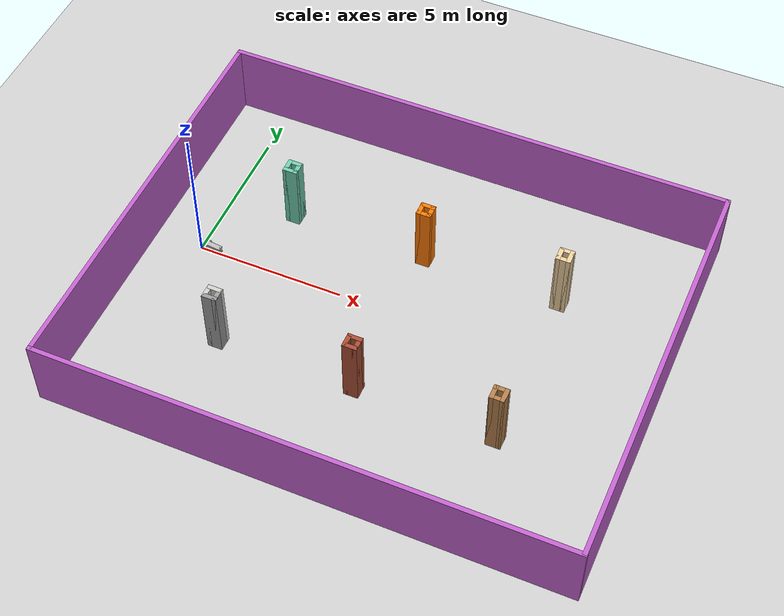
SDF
<sdf version="1.7">
 <world name="default">
  <light name="sun" type="directional">
   <pose>0 0 10 0 -0 0</pose>
   <diffuse>0.8 0.8 0.8 1</diffuse>
   <specular>0.2 0.2 0.2 1</specular>
   <attenuation>
    <range>1000</range>
    <constant>0.9</constant>
    <linear>0.01</linear>
    <quadratic>0.001</quadratic>
   </attenuation>
   <direction>-0.5 0.1 -0.9</direction>
   <spot><inner_angle>0</inner_angle><outer_angle>0</outer_angle><falloff>0</falloff></spot>
  </light>
  <model name="ground_plane">
   <static>1</static>
   <link name="link">
    <collision name="collision">
     <geometry><plane><normal>0 0 1</normal><size>100 100</size></plane></geometry>
     <surface><friction><ode><mu>100</mu><mu2>50</mu2></ode></friction></surface>
    </collision>
    <visual name="visual">
     <cast_shadows>0</cast_shadows>
     <geometry><plane><normal>0 0 1</normal><size>100 100</size></plane></geometry>
     <material>
      <script><uri>file://media/materials/scripts/gazebo.material</uri><name>Gazebo/Grey</name></script>
     </material>
    </visual>
   </link>
  </model>
  <gravity>0 0 -9.8</gravity>
  <magnetic_field>6e-06 2.3e-05 -4.2e-05</magnetic_field>
  <atmosphere type="adiabatic"/>
  <physics type="ode">
   <max_step_size>0.001</max_step_size>
   <real_time_factor>1</real_time_factor>
   <real_time_update_rate>1000</real_time_update_rate>
  </physics>
  <scene><ambient>0.4 0.4 0.4 1</ambient><background>0.7 0.7 0.7 1</background><shadows>1</shadows></scene>
  <audio><device>default</device></audio>
  <spherical_coordinates>
   <surface_model>EARTH_WGS84</surface_model>
   <latitude_deg>0</latitude_deg>
   <longitude_deg>0</longitude_deg>
   <elevation>0</elevation>
   <heading_deg>0</heading_deg>
  </spherical_coordinates>
  <model name="store_room">
   <pose>6.98066 -0.310701 0 0 -0 0</pose>
   <link name="Wall_0">
    <collision name="Wall_0_Collision">
     <geometry><box><size>0.5 0.15 2.5</size></box></geometry>
     <pose>0 0 1.25 0 -0 0</pose>
    </collision>
    <visual name="Wall_0_Visual">
     <pose>0 0 1.25 0 -0 0</pose>
     <geometry><box><size>0.5 0.15 2.5</size></box></geometry>
     <material>
      <script><uri>file://media/materials/scripts/gazebo.material</uri><name>Gazebo/Bricks</name></script>
      <ambient>1 1 1 1</ambient>
     </material>
     <meta><layer>0</layer></meta>
    </visual>
    <pose>-0.002262 -2.75 0 0 -0 3.14159</pose>
   </link>
   <link name="Wall_24">
    <collision name="Wall_24_Collision">
     <geometry><box><size>0.5 0.15 2.5</size></box></geometry>
     <pose>0 0 1.25 0 -0 0</pose>
    </collision>
    <visual name="Wall_24_Visual">
     <pose>0 0 1.25 0 -0 0</pose>
     <geometry><box><size>0.5 0.15 2.5</size></box></geometry>
     <material>
      <script><uri>file://media/materials/scripts/gazebo.material</uri><name>Gazebo/Bricks</name></script>
      <ambient>1 1 1 1</ambient>
     </material>
     <meta><layer>0</layer></meta>
    </visual>
    <pose>-0.177262 -2.925 0 0 -0 -1.5708</pose>
   </link>
   <link name="Wall_25">
    <collision name="Wall_25_Collision">
     <geometry><box><size>0.5 0.15 2.5</size></box></geometry>
     <pose>0 0 1.25 0 -0 0</pose>
    </collision>
    <visual name="Wall_25_Visual">
     <pose>0 0 1.25 0 -0 0</pose>
     <geometry><box><size>0.5 0.15 2.5</size></box></geometry>
     <material>
      <script><uri>file://media/materials/scripts/gazebo.material</uri><name>Gazebo/Bricks</name></script>
      <ambient>1 1 1 1</ambient>
     </material>
     <meta><layer>0</layer></meta>
    </visual>
    <pose>-0.002262 -3.1 0 0 -0 0</pose>
   </link>
   <link name="Wall_26">
    <collision name="Wall_26_Collision">
     <geometry><box><size>0.5 0.15 2.5</size></box></geometry>
     <pose>0 0 1.25 0 -0 0</pose>
    </collision>
    <visual name="Wall_26_Visual">
     <pose>0 0 1.25 0 -0 0</pose>
     <geometry><box><size>0.5 0.15 2.5</size></box></geometry>
     <material>
      <script><uri>file://media/materials/scripts/gazebo.material</uri><name>Gazebo/Bricks</name></script>
      <ambient>1 1 1 1</ambient>
     </material>
     <meta><layer>0</layer></meta>
    </visual>
    <pose>0.172738 -2.925 0 0 -0 1.5708</pose>
   </link>
   <link name="Wall_31">
    <collision name="Wall_31_Collision">
     <geometry><box><size>0.5 0.15 2.5</size></box></geometry>
     <pose>0 0 1.25 0 -0 0</pose>
    </collision>
    <visual name="Wall_31_Visual">
     <pose>0 0 1.25 0 -0 0</pose>
     <geometry><box><size>0.5 0.15 2.5</size></box></geometry>
     <material>
      <script><uri>file://media/materials/scripts/gazebo.material</uri><name>Gazebo/Wood</name></script>
      <ambient>1 1 1 1</ambient>
     </material>
     <meta><layer>0</layer></meta>
    </visual>
    <pose>4.52274 -2.925 0 0 -0 -1.5708</pose>
   </link>
   <link name="Wall_32">
    <collision name="Wall_32_Collision">
     <geometry><box><size>0.5 0.15 2.5</size></box></geometry>
     <pose>0 0 1.25 0 -0 0</pose>
    </collision>
    <visual name="Wall_32_Visual">
     <pose>0 0 1.25 0 -0 0</pose>
     <geometry><box><size>0.5 0.15 2.5</size></box></geometry>
     <material>
      <script><uri>file://media/materials/scripts/gazebo.material</uri><name>Gazebo/Wood</name></script>
      <ambient>1 1 1 1</ambient>
     </material>
     <meta><layer>0</layer></meta>
    </visual>
    <pose>4.69774 -3.1 0 0 -0 0</pose>
   </link>
   <link name="Wall_33">
    <collision name="Wall_33_Collision">
     <geometry><box><size>0.5 0.15 2.5</size></box></geometry>
     <pose>0 0 1.25 0 -0 0</pose>
    </collision>
    <visual name="Wall_33_Visual">
     <pose>0 0 1.25 0 -0 0</pose>
     <geometry><box><size>0.5 0.15 2.5</size></box></geometry>
     <material>
      <script><uri>file://media/materials/scripts/gazebo.material</uri><name>Gazebo/Wood</name></script>
      <ambient>1 1 1 1</ambient>
     </material>
     <meta><layer>0</layer></meta>
    </visual>
    <pose>4.87274 -2.925 0 0 -0 1.5708</pose>
   </link>
   <link name="Wall_34">
    <collision name="Wall_34_Collision">
     <geometry><box><size>0.5 0.15 2.5</size></box></geometry>
     <pose>0 0 1.25 0 -0 0</pose>
    </collision>
    <visual name="Wall_34_Visual">
     <pose>0 0 1.25 0 -0 0</pose>
     <geometry><box><size>0.5 0.15 2.5</size></box></geometry>
     <material>
      <script><uri>file://media/materials/scripts/gazebo.material</uri><name>Gazebo/Wood</name></script>
      <ambient>1 1 1 1</ambient>
     </material>
     <meta><layer>0</layer></meta>
    </visual>
    <pose>4.69774 -2.75 0 0 -0 3.14159</pose>
   </link>
   <link name="Wall_37">
    <collision name="Wall_37_Collision">
     <geometry><box><size>0.5 0.15 2.5</size></box></geometry>
     <pose>0 0 1.25 0 -0 0</pose>
    </collision>
    <visual name="Wall_37_Visual">
     <pose>0 0 1.25 0 -0 0</pose>
     <geometry><box><size>0.5 0.15 2.5</size></box></geometry>
     <material>
      <script><uri>file://media/materials/scripts/gazebo.material</uri><name>Gazebo/Grey</name></script>
      <ambient>1 1 1 1</ambient>
     </material>
     <meta><layer>0</layer></meta>
    </visual>
    <pose>-4.52726 -2.925 0 0 -0 1.5708</pose>
   </link>
   <link name="Wall_38">
    <collision name="Wall_38_Collision">
     <geometry><box><size>0.5 0.15 2.5</size></box></geometry>
     <pose>0 0 1.25 0 -0 0</pose>
    </collision>
    <visual name="Wall_38_Visual">
     <pose>0 0 1.25 0 -0 0</pose>
     <geometry><box><size>0.5 0.15 2.5</size></box></geometry>
     <material>
      <script><uri>file://media/materials/scripts/gazebo.material</uri><name>Gazebo/CeilingTiled</name></script>
      <ambient>1 1 1 1</ambient>
     </material>
     <meta><layer>0</layer></meta>
    </visual>
    <pose>-4.70226 -2.75 0 0 -0 3.14159</pose>
   </link>
   <link name="Wall_39">
    <collision name="Wall_39_Collision">
     <geometry><box><size>0.5 0.15 2.5</size></box></geometry>
     <pose>0 0 1.25 0 -0 0</pose>
    </collision>
    <visual name="Wall_39_Visual">
     <pose>0 0 1.25 0 -0 0</pose>
     <geometry><box><size>0.5 0.15 2.5</size></box></geometry>
     <material>
      <script><uri>file://media/materials/scripts/gazebo.material</uri><name>Gazebo/CeilingTiled</name></script>
      <ambient>1 1 1 1</ambient>
     </material>
     <meta><layer>0</layer></meta>
    </visual>
    <pose>-4.87726 -2.925 0 0 -0 -1.5708</pose>
   </link>
   <link name="Wall_40">
    <collision name="Wall_40_Collision">
     <geometry><box><size>0.5 0.15 2.5</size></box></geometry>
     <pose>0 0 1.25 0 -0 0</pose>
    </collision>
    <visual name="Wall_40_Visual">
     <pose>0 0 1.25 0 -0 0</pose>
     <geometry><box><size>0.5 0.15 2.5</size></box></geometry>
     <material>
      <script><uri>file://media/materials/scripts/gazebo.material</uri><name>Gazebo/Grey</name></script>
      <ambient>1 1 1 1</ambient>
     </material>
     <meta><layer>0</layer></meta>
    </visual>
    <pose>-4.70226 -3.1 0 0 -0 0</pose>
   </link>
   <link name="Wall_44">
    <collision name="Wall_44_Collision">
     <geometry><box><size>0.5 0.15 2.5</size></box></geometry>
     <pose>0 0 1.25 0 -0 0</pose>
    </collision>
    <visual name="Wall_44_Visual">
     <pose>0 0 1.25 0 -0 0</pose>
     <geometry><box><size>0.5 0.15 2.5</size></box></geometry>
     <material>
      <script><uri>file://media/materials/scripts/gazebo.material</uri><name>Gazebo/Grey</name></script>
      <ambient>0.996078 0.47451 0.0196078 1</ambient>
     </material>
     <meta><layer>0</layer></meta>
    </visual>
    <pose>-0.002262 2.6 0 0 -0 3.14159</pose>
   </link>
   <link name="Wall_45">
    <collision name="Wall_45_Collision">
     <geometry><box><size>0.5 0.15 2.5</size></box></geometry>
     <pose>0 0 1.25 0 -0 0</pose>
    </collision>
    <visual name="Wall_45_Visual">
     <pose>0 0 1.25 0 -0 0</pose>
     <geometry><box><size>0.5 0.15 2.5</size></box></geometry>
     <material>
      <script><uri>file://media/materials/scripts/gazebo.material</uri><name>Gazebo/Grey</name></script>
      <ambient>0.996078 0.47451 0.0196078 1</ambient>
     </material>
     <meta><layer>0</layer></meta>
    </visual>
    <pose>-0.177262 2.775 0 0 -0 1.5708</pose>
   </link>
   <link name="Wall_46">
    <collision name="Wall_46_Collision">
     <geometry><box><size>0.5 0.15 2.5</size></box></geometry>
     <pose>0 0 1.25 0 -0 0</pose>
    </collision>
    <visual name="Wall_46_Visual">
     <pose>0 0 1.25 0 -0 0</pose>
     <geometry><box><size>0.5 0.15 2.5</size></box></geometry>
     <material>
      <script><uri>file://media/materials/scripts/gazebo.material</uri><name>Gazebo/Grey</name></script>
      <ambient>0.996078 0.47451 0.0196078 1</ambient>
     </material>
     <meta><layer>0</layer></meta>
    </visual>
    <pose>-0.002262 2.95 0 0 -0 0</pose>
   </link>
   <link name="Wall_47">
    <collision name="Wall_47_Collision">
     <geometry><box><size>0.5 0.15 2.5</size></box></geometry>
     <pose>0 0 1.25 0 -0 0</pose>
    </collision>
    <visual name="Wall_47_Visual">
     <pose>0 0 1.25 0 -0 0</pose>
     <geometry><box><size>0.5 0.15 2.5</size></box></geometry>
     <material>
      <script><uri>file://media/materials/scripts/gazebo.material</uri><name>Gazebo/Grey</name></script>
      <ambient>0.996078 0.47451 0.0196078 1</ambient>
     </material>
     <meta><layer>0</layer></meta>
    </visual>
    <pose>0.172738 2.775 0 0 -0 -1.5708</pose>
   </link>
   <link name="Wall_50">
    <collision name="Wall_50_Collision">
     <geometry><box><size>0.5 0.15 2.5</size></box></geometry>
     <pose>0 0 1.25 0 -0 0</pose>
    </collision>
    <visual name="Wall_50_Visual">
     <pose>0 0 1.25 0 -0 0</pose>
     <geometry><box><size>0.5 0.15 2.5</size></box></geometry>
     <material>
      <script><uri>file://media/materials/scripts/gazebo.material</uri><name>Gazebo/Grey</name></script>
      <ambient>0.921569 0.807843 0.615686 1</ambient>
     </material>
     <meta><layer>0</layer></meta>
    </visual>
    <pose>4.69774 2.6 0 0 -0 0</pose>
   </link>
   <link name="Wall_51">
    <collision name="Wall_51_Collision">
     <geometry><box><size>0.5 0.15 2.5</size></box></geometry>
     <pose>0 0 1.25 0 -0 0</pose>
    </collision>
    <visual name="Wall_51_Visual">
     <pose>0 0 1.25 0 -0 0</pose>
     <geometry><box><size>0.5 0.15 2.5</size></box></geometry>
     <material>
      <script><uri>file://media/materials/scripts/gazebo.material</uri><name>Gazebo/Grey</name></script>
      <ambient>0.921569 0.807843 0.615686 1</ambient>
     </material>
     <meta><layer>0</layer></meta>
    </visual>
    <pose>4.87274 2.775 0 0 -0 1.5708</pose>
   </link>
   <link name="Wall_52">
    <collision name="Wall_52_Collision">
     <geometry><box><size>0.5 0.15 2.5</size></box></geometry>
     <pose>0 0 1.25 0 -0 0</pose>
    </collision>
    <visual name="Wall_52_Visual">
     <pose>0 0 1.25 0 -0 0</pose>
     <geometry><box><size>0.5 0.15 2.5</size></box></geometry>
     <material>
      <script><uri>file://media/materials/scripts/gazebo.material</uri><name>Gazebo/Grey</name></script>
      <ambient>0.921569 0.807843 0.615686 1</ambient>
     </material>
     <meta><layer>0</layer></meta>
    </visual>
    <pose>4.69774 2.95 0 0 -0 3.14159</pose>
   </link>
   <link name="Wall_53">
    <collision name="Wall_53_Collision">
     <geometry><box><size>0.5 0.15 2.5</size></box></geometry>
     <pose>0 0 1.25 0 -0 0</pose>
    </collision>
    <visual name="Wall_53_Visual">
     <pose>0 0 1.25 0 -0 0</pose>
     <geometry><box><size>0.5 0.15 2.5</size></box></geometry>
     <material>
      <script><uri>file://media/materials/scripts/gazebo.material</uri><name>Gazebo/Grey</name></script>
      <ambient>0.921569 0.807843 0.615686 1</ambient>
     </material>
     <meta><layer>0</layer></meta>
    </visual>
    <pose>4.52274 2.775 0 0 -0 -1.5708</pose>
   </link>
   <link name="Wall_57">
    <collision name="Wall_57_Collision">
     <geometry><box><size>0.5 0.15 2.5</size></box></geometry>
     <pose>0 0 1.25 0 -0 0</pose>
    </collision>
    <visual name="Wall_57_Visual">
     <pose>0 0 1.25 0 -0 0</pose>
     <geometry><box><size>0.5 0.15 2.5</size></box></geometry>
     <material>
      <script><uri>file://media/materials/scripts/gazebo.material</uri><name>Gazebo/Grey</name></script>
      <ambient>0.435294 0.796078 0.67451 1</ambient>
     </material>
     <meta><layer>0</layer></meta>
    </visual>
    <pose>-4.70226 2.6 0 0 -0 3.14159</pose>
   </link>
   <link name="Wall_58">
    <collision name="Wall_58_Collision">
     <geometry><box><size>0.5 0.15 2.5</size></box></geometry>
     <pose>0 0 1.25 0 -0 0</pose>
    </collision>
    <visual name="Wall_58_Visual">
     <pose>0 0 1.25 0 -0 0</pose>
     <geometry><box><size>0.5 0.15 2.5</size></box></geometry>
     <material>
      <script><uri>file://media/materials/scripts/gazebo.material</uri><name>Gazebo/Grey</name></script>
      <ambient>0.435294 0.796078 0.67451 1</ambient>
     </material>
     <meta><layer>0</layer></meta>
    </visual>
    <pose>-4.87726 2.775 0 0 -0 1.5708</pose>
   </link>
   <link name="Wall_59">
    <collision name="Wall_59_Collision">
     <geometry><box><size>0.5 0.15 2.5</size></box></geometry>
     <pose>0 0 1.25 0 -0 0</pose>
    </collision>
    <visual name="Wall_59_Visual">
     <pose>0 0 1.25 0 -0 0</pose>
     <geometry><box><size>0.5 0.15 2.5</size></box></geometry>
     <material>
      <script><uri>file://media/materials/scripts/gazebo.material</uri><name>Gazebo/Grey</name></script>
      <ambient>0.435294 0.796078 0.67451 1</ambient>
     </material>
     <meta><layer>0</layer></meta>
    </visual>
    <pose>-4.70226 2.95 0 0 -0 0</pose>
   </link>
   <link name="Wall_60">
    <collision name="Wall_60_Collision">
     <geometry><box><size>0.5 0.15 2.5</size></box></geometry>
     <pose>0 0 1.25 0 -0 0</pose>
    </collision>
    <visual name="Wall_60_Visual">
     <pose>0 0 1.25 0 -0 0</pose>
     <geometry><box><size>0.5 0.15 2.5</size></box></geometry>
     <material>
      <script><uri>file://media/materials/scripts/gazebo.material</uri><name>Gazebo/Grey</name></script>
      <ambient>0.435294 0.796078 0.67451 1</ambient>
     </material>
     <meta><layer>0</layer></meta>
    </visual>
    <pose>-4.52726 2.775 0 0 -0 -1.5708</pose>
   </link>
   <link name="Wall_65">
    <collision name="Wall_65_Collision">
     <geometry><box><size>14 0.15 2.5</size></box></geometry>
     <pose>0 0 1.25 0 -0 0</pose>
    </collision>
    <visual name="Wall_65_Visual">
     <pose>0 0 1.25 0 -0 0</pose>
     <geometry><box><size>14 0.15 2.5</size></box></geometry>
     <material>
      <script><uri>file://media/materials/scripts/gazebo.material</uri><name>Gazebo/Grey</name></script>
      <ambient>0.752941 0.380392 0.796078 1</ambient>
     </material>
     <meta><layer>0</layer></meta>
    </visual>
    <pose>8.72274 0.024999 0 0 -0 1.5708</pose>
   </link>
   <link name="Wall_68">
    <collision name="Wall_68_Collision">
     <geometry><box><size>14 0.15 2.5</size></box></geometry>
     <pose>0 0 1.25 0 -0 0</pose>
    </collision>
    <visual name="Wall_68_Visual">
     <pose>0 0 1.25 0 -0 0</pose>
     <geometry><box><size>14 0.15 2.5</size></box></geometry>
     <material>
      <script><uri>file://media/materials/scripts/gazebo.material</uri><name>Gazebo/Grey</name></script>
      <ambient>0.752941 0.380392 0.796078 1</ambient>
     </material>
     <meta><layer>0</layer></meta>
    </visual>
    <pose>-8.72726 0.024999 0 0 -0 1.5708</pose>
   </link>
   <link name="Wall_69">
    <collision name="Wall_69_Collision">
     <geometry><box><size>17.6 0.15 2.5</size></box></geometry>
     <pose>0 0 1.25 0 -0 0</pose>
    </collision>
    <visual name="Wall_69_Visual">
     <pose>0 0 1.25 0 -0 0</pose>
     <geometry><box><size>17.6 0.15 2.5</size></box></geometry>
     <material>
      <script><uri>file://media/materials/scripts/gazebo.material</uri><name>Gazebo/Grey</name></script>
      <ambient>0.752941 0.380392 0.796078 1</ambient>
     </material>
     <meta><layer>0</layer></meta>
    </visual>
    <pose>-0.002262 6.95 0 0 -0 0</pose>
   </link>
   <link name="Wall_73">
    <collision name="Wall_73_Collision">
     <geometry><box><size>17.6 0.15 2.5</size></box></geometry>
     <pose>0 0 1.25 0 -0 0</pose>
    </collision>
    <visual name="Wall_73_Visual">
     <pose>0 0 1.25 0 -0 0</pose>
     <geometry><box><size>17.6 0.15 2.5</size></box></geometry>
     <material>
      <script><uri>file://media/materials/scripts/gazebo.material</uri><name>Gazebo/Grey</name></script>
      <ambient>0.752941 0.380392 0.796078 1</ambient>
     </material>
     <meta><layer>0</layer></meta>
    </visual>
    <pose>0.002263 -6.95 0 0 -0 3.14159</pose>
   </link>
   <static>1</static>
  </model>
  <model name="tricycle">
   <link name="base_link">
    <inertial>
     <pose>0.256925 0 0.210311 0 -0 0</pose>
     <mass>16.1</mass>
     <inertia>
      <ixx>0.0621784</ixx>
      <ixy>0</ixy>
      <ixz>-0.00154037</ixz>
      <iyy>0.293969</iyy>
      <iyz>0</iyz>
      <izz>0.327896</izz>
     </inertia>
    </inertial>
    <collision name="base_link_fixed_joint_lump__base_footprint_collision">
     <pose>0.305 0 0.21 0 -0 0</pose>
     <geometry><box><size>0.61 0.18 0.09</size></box></geometry>
    </collision>
    <collision name="base_link_fixed_joint_lump__laser_link_collision_1">
     <pose>0.565 0 0.26 0 -0 0</pose>
     <geometry><cylinder><length>0.01</length><radius>0.01</radius></cylinder></geometry>
    </collision>
    <visual name="base_link_fixed_joint_lump__base_footprint_visual">
     <pose>0.305 0 0.21 0 -0 0</pose>
     <geometry><box><size>0.61 0.18 0.09</size></box></geometry>
    </visual>
    <visual name="base_link_fixed_joint_lump__laser_link_visual_1">
     <pose>0.565 0 0.26 0 -0 0</pose>
     <geometry><cylinder><length>0.01</length><radius>0.01</radius></cylinder></geometry>
    </visual>
    <sensor name="laser" type="ray">
     <always_on>1</always_on>
     <visualize>1</visualize>
     <update_rate>10</update_rate>
     <ray>
      <scan>
       <horizontal>
        <samples>120</samples>
        <resolution>1</resolution>
        <min_angle>-2.35619</min_angle>
        <max_angle>2.35619</max_angle>
       </horizontal>
       <vertical><samples>1</samples><min_angle>0</min_angle><max_angle>0</max_angle></vertical>
      </scan>
      <range><min>0.3</min><max>30</max><resolution>0.015</resolution></range>
      <noise><type>gaussian</type><mean>0</mean><stddev>0.01</stddev></noise>
     </ray>
     <plugin name="scan" filename="libgazebo_ros_ray_sensor.so">
      <ros><remapping>~/out:=scan</remapping></ros>
      <output_type>sensor_msgs/LaserScan</output_type>
      <frame_name>laser_link</frame_name>
     </plugin>
     <pose>0.565 0 0.26 0 -0 0</pose>
    </sensor>
   </link>
   <joint name="left_rear_wheel_joint" type="revolute">
    <pose relative_to="base_link">0.055 0.15 0.12 -1.57 0 0</pose>
    <parent>base_link</parent>
    <child>left_rear_wheel</child>
    <axis>
     <xyz>0 0 1</xyz>
     <limit><lower>-1e+16</lower><upper>1e+16</upper></limit>
     <dynamics>
      <damping>0.2</damping>
      <friction>0</friction>
      <spring_reference>0</spring_reference>
      <spring_stiffness>0</spring_stiffness>
     </dynamics>
    </axis>
   </joint>
   <link name="left_rear_wheel">
    <pose relative_to="left_rear_wheel_joint">0 0 0 0 -0 0</pose>
    <inertial>
     <mass>1.2</mass>
     <inertia>
      <ixx>0.00145833</ixx>
      <ixy>0</ixy>
      <ixz>0</ixz>
      <iyy>0.00145833</iyy>
      <iyz>0</iyz>
      <izz>0.00125</izz>
     </inertia>
    </inertial>
    <collision name="left_rear_wheel_collision">
     <geometry><cylinder><length>0.05</length><radius>0.1</radius></cylinder></geometry>
    </collision>
    <visual name="left_rear_wheel_visual">
     <geometry><cylinder><length>0.05</length><radius>0.1</radius></cylinder></geometry>
    </visual>
   </link>
   <joint name="right_rear_wheel_joint" type="revolute">
    <pose relative_to="base_link">0.055 -0.15 0.12 -1.57 0 0</pose>
    <parent>base_link</parent>
    <child>right_rear_wheel</child>
    <axis>
     <xyz>0 0 1</xyz>
     <limit><lower>-1e+16</lower><upper>1e+16</upper></limit>
     <dynamics>
      <damping>0.2</damping>
      <friction>0</friction>
      <spring_reference>0</spring_reference>
      <spring_stiffness>0</spring_stiffness>
     </dynamics>
    </axis>
   </joint>
   <link name="right_rear_wheel">
    <pose relative_to="right_rear_wheel_joint">0 0 0 0 -0 0</pose>
    <inertial>
     <mass>1.2</mass>
     <inertia>
      <ixx>0.00145833</ixx>
      <ixy>0</ixy>
      <ixz>0</ixz>
      <iyy>0.00145833</iyy>
      <iyz>0</iyz>
      <izz>0.00125</izz>
     </inertia>
    </inertial>
    <collision name="right_rear_wheel_collision">
     <geometry><cylinder><length>0.05</length><radius>0.1</radius></cylinder></geometry>
    </collision>
    <visual name="right_rear_wheel_visual">
     <geometry><cylinder><length>0.05</length><radius>0.1</radius></cylinder></geometry>
    </visual>
   </link>
   <joint name="steering_joint" type="revolute">
    <pose relative_to="base_link">0.555 0 0.12 0 -0 0</pose>
    <parent>base_link</parent>
    <child>steering_link</child>
    <axis>
     <xyz>0 0 1</xyz>
     <limit><lower>-0.36</lower><upper>0.36</upper><effort>0</effort><velocity>0</velocity></limit>
     <dynamics>
      <damping>0.2</damping>
      <friction>0</friction>
      <spring_reference>0</spring_reference>
      <spring_stiffness>0</spring_stiffness>
     </dynamics>
    </axis>
   </joint>
   <link name="steering_link">
    <pose relative_to="steering_joint">0 0 0 0 -0 0</pose>
    <inertial>
     <mass>0.05</mass>
     <inertia><ixx>0.001</ixx><ixy>0</ixy><ixz>0</ixz><iyy>0.001</iyy><iyz>0</iyz><izz>0.001</izz></inertia>
    </inertial>
    <visual name="steering_link_visual"><geometry><box><size>0.01 0.01 0.01</size></box></geometry></visual>
   </link>
   <joint name="traction_joint" type="revolute">
    <pose relative_to="steering_link">0 0 0 -1.57 1.57 -0</pose>
    <parent>steering_link</parent>
    <child>front_wheel_link</child>
    <axis>
     <xyz>0 0 1</xyz>
     <limit><lower>-1e+16</lower><upper>1e+16</upper></limit>
     <dynamics>
      <damping>0.2</damping>
      <friction>0</friction>
      <spring_reference>0</spring_reference>
      <spring_stiffness>0</spring_stiffness>
     </dynamics>
    </axis>
   </joint>
   <link name="front_wheel_link">
    <pose relative_to="traction_joint">0 0 0 0 -0 0</pose>
    <inertial>
     <mass>1.2</mass>
     <inertia>
      <ixx>0.0145833</ixx>
      <ixy>0</ixy>
      <ixz>0</ixz>
      <iyy>0.0145833</iyy>
      <iyz>0</iyz>
      <izz>0.0125</izz>
     </inertia>
    </inertial>
    <collision name="front_wheel_link_collision">
     <geometry><cylinder><length>0.05</length><radius>0.1</radius></cylinder></geometry>
    </collision>
    <visual name="front_wheel_link_visual">
     <geometry><cylinder><length>0.05</length><radius>0.1</radius></cylinder></geometry>
    </visual>
   </link>
   <static>0</static>
   <plugin name="tricycle_control" filename="libgazebo_ros2_control.so">
    <parameters>/home/timothy/segwayrmp_ros2/install/segwayrmp_description/share/segwayrmp_description/config/tricycle_drive_controller.yaml</parameters>
   </plugin>
   <pose>0.063924 0.114726 -0.019981 -4e-06 0.000125 -0.092965</pose>
  </model>
 </world>
</sdf>
